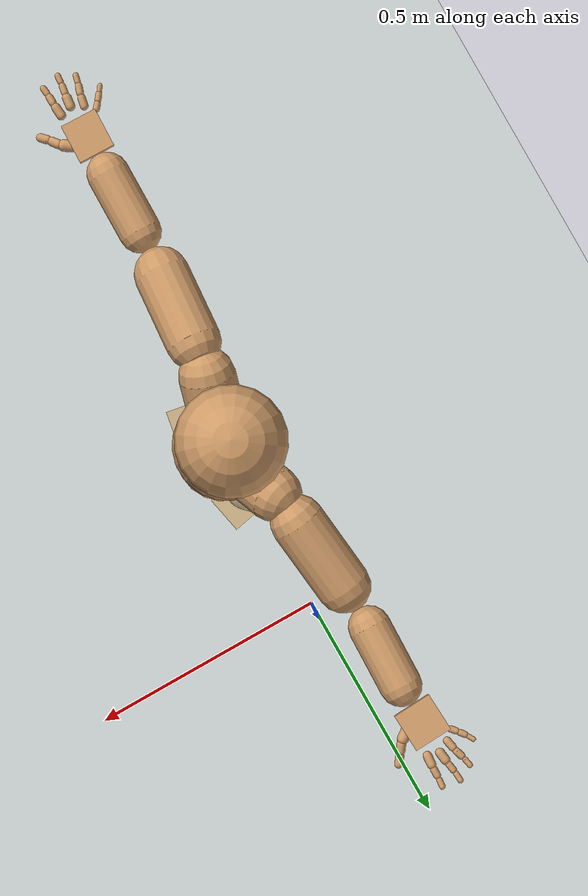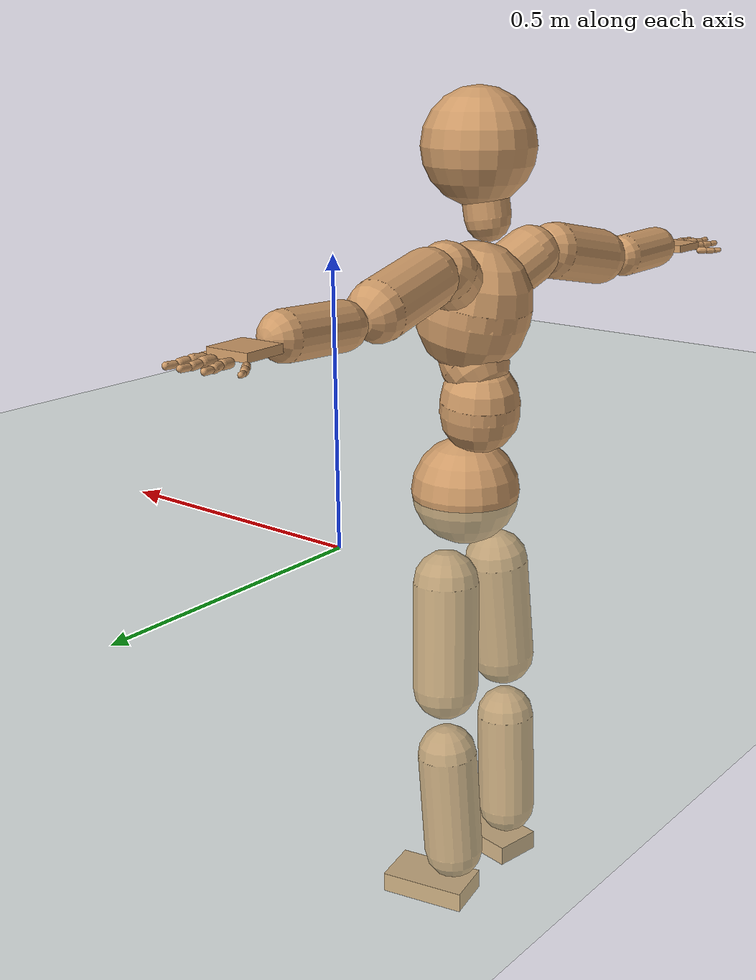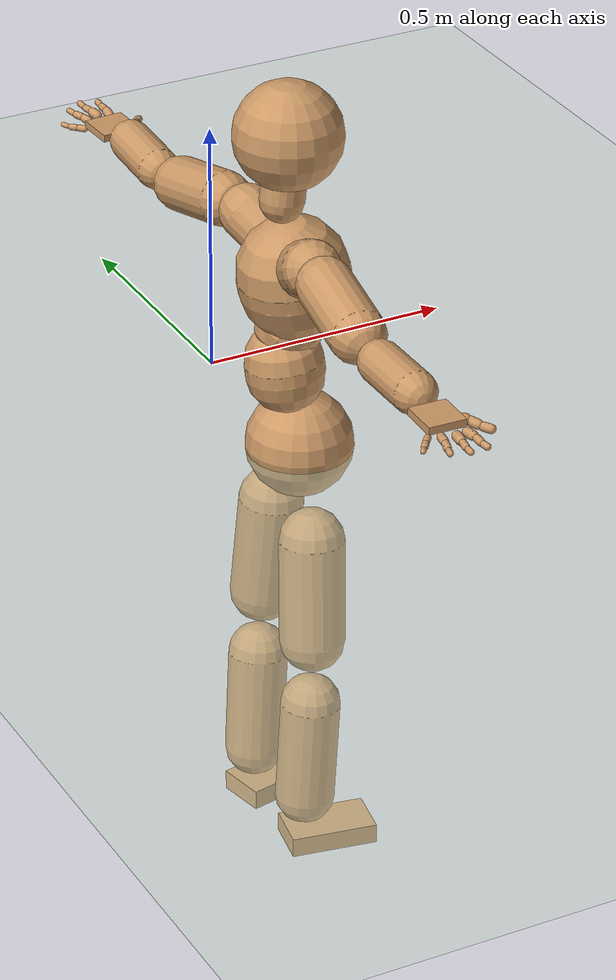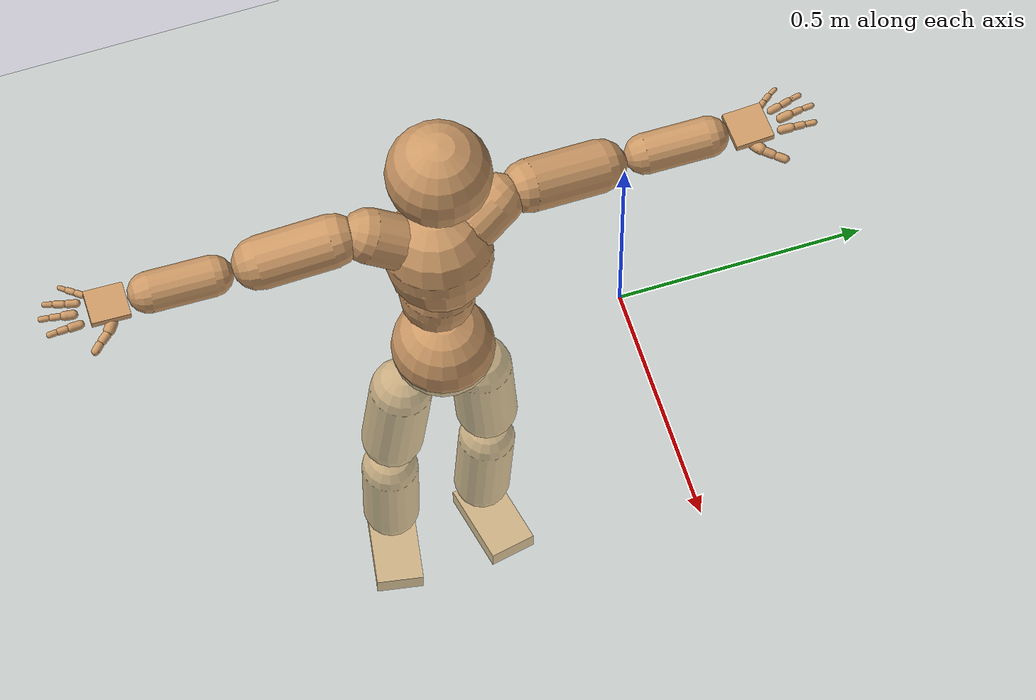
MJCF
<mujoco model="humanoid">
  <compiler coordinate="local" angle="radian"/>
  <default>
    <joint damping="0.0" armature="0.01" stiffness="0.0" limited="true"/>
    <geom conaffinity="1" condim="3" contype="7" margin="0.001" rgba="0.8 0.6 .4 1"/>
  </default>
  <asset>
    <texture type="skybox" builtin="gradient" rgb1=".4 .5 .6" rgb2="0 0 0" width="100" height="100"/>
    <texture builtin="flat" height="1278" mark="cross" markrgb="1 1 1" name="texgeom" random="0.01" rgb1="0.8 0.6 0.4" rgb2="0.8 0.6 0.4" type="cube" width="127"/>
    <texture builtin="checker" height="100" name="texplane" rgb1="0 0 0" rgb2="0.8 0.8 0.8" type="2d" width="100"/>
    <material name="MatPlane" reflectance="0.5" shininess="1" specular="1" texrepeat="60 60" texture="texplane"/>
    <material name="geom" texture="texgeom" texuniform="true"/>
  </asset>
  <worldbody>
    <light cutoff="100" diffuse="1 1 1" dir="-0 0 -1.3" directional="true" exponent="1" pos="0 0 1.3" specular=".1 .1 .1"/>
    <geom conaffinity="1" condim="3" name="floor" pos="0 0 0" rgba="0.8 0.9 0.8 1" size="100 100 .2" type="plane" material="MatPlane"/>
    <body name="Pelvis" pos="0.0008 -0.3659 0.0106">
      <freejoint name="Pelvis"/>
      <geom type="sphere" contype="1" conaffinity="1" density="500" size="0.1036" pos="0.0000 0.0000 0.0000" name="Pelvis"/>
      <body name="L_Hip" pos="-0.0129 0.0772 -0.0911">
        <joint name="L_Hip_x" type="hinge" pos="0 0 0" axis="1 0 0" stiffness="800" damping="80" armature="0.02" range="-180.0000 180.0000"/>
        <joint name="L_Hip_y" type="hinge" pos="0 0 0" axis="0 1 0" stiffness="800" damping="80" armature="0.02" range="-180.0000 180.0000"/>
        <joint name="L_Hip_z" type="hinge" pos="0 0 0" axis="0 0 1" stiffness="800" damping="80" armature="0.02" range="-180.0000 180.0000"/>
        <geom type="capsule" contype="1" conaffinity="1" density="500" fromto="-0.0038 0.0053 -0.0697 -0.0152 0.0213 -0.2790" size="0.063" name="L_Hip"/>
        <body name="L_Knee" pos="-0.0191 0.0266 -0.3487">
          <joint name="L_Knee_x" type="hinge" pos="0 0 0" axis="1 0 0" stiffness="800" damping="80" armature="0.02" range="-180.0000 180.0000"/>
          <joint name="L_Knee_y" type="hinge" pos="0 0 0" axis="0 1 0" stiffness="800" damping="80" armature="0.02" range="-180.0000 180.0000"/>
          <joint name="L_Knee_z" type="hinge" pos="0 0 0" axis="0 0 1" stiffness="800" damping="80" armature="0.02" range="-180.0000 180.0000"/>
          <geom type="capsule" contype="1" conaffinity="1" density="500" fromto="-0.0040 -0.0021 -0.0712 -0.0159 -0.0085 -0.2850" size="0.0578" name="L_Knee"/>
          <body name="L_Ankle" pos="-0.0199 -0.0106 -0.3562">
            <joint name="L_Ankle_x" type="hinge" pos="0 0 0" axis="1 0 0" stiffness="800" damping="80" armature="0.02" range="-180.0000 180.0000"/>
            <joint name="L_Ankle_y" type="hinge" pos="0 0 0" axis="0 1 0" stiffness="800" damping="80" armature="0.02" range="-180.0000 180.0000"/>
            <joint name="L_Ankle_z" type="hinge" pos="0 0 0" axis="0 0 1" stiffness="800" damping="80" armature="0.02" range="-180.0000 180.0000"/>
            <geom type="box" contype="1" conaffinity="1" density="500" pos="0.0527 0.0107 -0.0207" size="0.0849 0.048 0.0198" quat="0.9950 0.0000 0.0000 0.1003" name="L_Ankle"/>
            <body name="L_Toe" pos="0.1054 0.0215 -0.0413">
              <joint name="L_Toe_x" type="hinge" pos="0 0 0" axis="1 0 0" stiffness="500" damping="50" armature="0.02" range="-180.0000 180.0000"/>
              <joint name="L_Toe_y" type="hinge" pos="0 0 0" axis="0 1 0" stiffness="500" damping="50" armature="0.02" range="-180.0000 180.0000"/>
              <joint name="L_Toe_z" type="hinge" pos="0 0 0" axis="0 0 1" stiffness="500" damping="50" armature="0.02" range="-180.0000 180.0000"/>
              <geom type="box" contype="1" conaffinity="1" density="500" pos="0.0000 0.0000 0.0214" size="0.0009 0.0024 0.001" quat="0.9942 0.0000 0.0000 0.1074" name="L_Toe"/>
            </body>
          </body>
        </body>
      </body>
      <body name="R_Hip" pos="-0.0141 -0.0767 -0.0975">
        <joint name="R_Hip_x" type="hinge" pos="0 0 0" axis="1 0 0" stiffness="800" damping="80" armature="0.02" range="-180.0000 180.0000"/>
        <joint name="R_Hip_y" type="hinge" pos="0 0 0" axis="0 1 0" stiffness="800" damping="80" armature="0.02" range="-180.0000 180.0000"/>
        <joint name="R_Hip_z" type="hinge" pos="0 0 0" axis="0 0 1" stiffness="800" damping="80" armature="0.02" range="-180.0000 180.0000"/>
        <geom type="capsule" contype="1" conaffinity="1" density="500" fromto="-0.0025 -0.0062 -0.0689 -0.0101 -0.0248 -0.2756" size="0.0629" name="R_Hip"/>
        <body name="R_Knee" pos="-0.0126 -0.031 -0.3445">
          <joint name="R_Knee_x" type="hinge" pos="0 0 0" axis="1 0 0" stiffness="800" damping="80" armature="0.02" range="-180.0000 180.0000"/>
          <joint name="R_Knee_y" type="hinge" pos="0 0 0" axis="0 1 0" stiffness="800" damping="80" armature="0.02" range="-180.0000 180.0000"/>
          <joint name="R_Knee_z" type="hinge" pos="0 0 0" axis="0 0 1" stiffness="800" damping="80" armature="0.02" range="-180.0000 180.0000"/>
          <geom type="capsule" contype="1" conaffinity="1" density="500" fromto="-0.0033 0.0012 -0.0696 -0.0131 0.0046 -0.2782" size="0.0578" name="R_Knee"/>
          <body name="R_Ankle" pos="-0.0164 0.0058 -0.3478">
            <joint name="R_Ankle_x" type="hinge" pos="0 0 0" axis="1 0 0" stiffness="800" damping="80" armature="0.02" range="-180.0000 180.0000"/>
            <joint name="R_Ankle_y" type="hinge" pos="0 0 0" axis="0 1 0" stiffness="800" damping="80" armature="0.02" range="-180.0000 180.0000"/>
            <joint name="R_Ankle_z" type="hinge" pos="0 0 0" axis="0 0 1" stiffness="800" damping="80" armature="0.02" range="-180.0000 180.0000"/>
            <geom type="box" contype="1" conaffinity="1" density="500" pos="0.0496 -0.0086 -0.0223" size="0.0849 0.048 0.0198" quat="0.9963 0.0000 0.0000 -0.0860" name="R_Ankle"/>
            <body name="R_Toe" pos="0.0991 -0.0172 -0.0445">
              <joint name="R_Toe_x" type="hinge" pos="0 0 0" axis="1 0 0" stiffness="500" damping="50" armature="0.02" range="-180.0000 180.0000"/>
              <joint name="R_Toe_y" type="hinge" pos="0 0 0" axis="0 1 0" stiffness="500" damping="50" armature="0.02" range="-180.0000 180.0000"/>
              <joint name="R_Toe_z" type="hinge" pos="0 0 0" axis="0 0 1" stiffness="500" damping="50" armature="0.02" range="-180.0000 180.0000"/>
              <geom type="box" contype="1" conaffinity="1" density="500" pos="0.0000 0.0000 0.0230" size="0.0009 0.0024 0.001" quat="0.9972 0.0000 0.0000 -0.0747" name="R_Toe"/>
            </body>
          </body>
        </body>
      </body>
      <body name="Torso" pos="-0.0255 -0.0057 0.1053">
        <joint name="Torso_x" type="hinge" pos="0 0 0" axis="1 0 0" stiffness="1000" damping="100" armature="0.02" range="-180.0000 180.0000"/>
        <joint name="Torso_y" type="hinge" pos="0 0 0" axis="0 1 0" stiffness="1000" damping="100" armature="0.02" range="-180.0000 180.0000"/>
        <joint name="Torso_z" type="hinge" pos="0 0 0" axis="0 0 1" stiffness="1000" damping="100" armature="0.02" range="-180.0000 180.0000"/>
        <geom type="capsule" contype="1" conaffinity="1" density="500" fromto="-0.0071 0.0066 0.0748 -0.0047 0.0044 0.0499" size="0.0755" name="Torso"/>
        <body name="Spine" pos="-0.0118 0.0111 0.1247">
          <joint name="Spine_x" type="hinge" pos="0 0 0" axis="1 0 0" stiffness="1000" damping="100" armature="0.02" range="-180.0000 180.0000"/>
          <joint name="Spine_y" type="hinge" pos="0 0 0" axis="0 1 0" stiffness="1000" damping="100" armature="0.02" range="-180.0000 180.0000"/>
          <joint name="Spine_z" type="hinge" pos="0 0 0" axis="0 0 1" stiffness="1000" damping="100" armature="0.02" range="-180.0000 180.0000"/>
          <geom type="capsule" contype="1" conaffinity="1" density="500" fromto="0.0231 -0.0038 0.0275 0.0154 -0.0026 0.0183" size="0.0642" name="Spine"/>
          <body name="Chest" pos="0.0385 -0.0064 0.0459">
            <joint name="Chest_x" type="hinge" pos="0 0 0" axis="1 0 0" stiffness="1000" damping="100" armature="0.02" range="-180.0000 180.0000"/>
            <joint name="Chest_y" type="hinge" pos="0 0 0" axis="0 1 0" stiffness="1000" damping="100" armature="0.02" range="-180.0000 180.0000"/>
            <joint name="Chest_z" type="hinge" pos="0 0 0" axis="0 0 1" stiffness="1000" damping="100" armature="0.02" range="-180.0000 180.0000"/>
            <geom type="capsule" contype="1" conaffinity="1" density="500" fromto="-0.0179 -0.0017 0.0891 -0.0120 -0.0011 0.0594" size="0.1061" name="Chest"/>
            <body name="Neck" pos="-0.0452 -0.006 0.2067">
              <joint name="Neck_x" type="hinge" pos="0 0 0" axis="1 0 0" stiffness="500" damping="50" armature="0.02" range="-180.0000 180.0000"/>
              <joint name="Neck_y" type="hinge" pos="0 0 0" axis="0 1 0" stiffness="500" damping="50" armature="0.02" range="-180.0000 180.0000"/>
              <joint name="Neck_z" type="hinge" pos="0 0 0" axis="0 0 1" stiffness="500" damping="50" armature="0.02" range="-180.0000 180.0000"/>
              <geom type="capsule" contype="1" conaffinity="1" density="500" fromto="0.0040 0.0018 0.0307 0.0160 0.0072 0.1228" size="0.0424" name="Neck"/>
              <body name="Head" pos="0.02 0.009 0.1534">
                <joint name="Head_x" type="hinge" pos="0 0 0" axis="1 0 0" stiffness="500" damping="50" armature="0.02" range="-180.0000 180.0000"/>
                <joint name="Head_y" type="hinge" pos="0 0 0" axis="0 1 0" stiffness="500" damping="50" armature="0.02" range="-180.0000 180.0000"/>
                <joint name="Head_z" type="hinge" pos="0 0 0" axis="0 0 1" stiffness="500" damping="50" armature="0.02" range="-180.0000 180.0000"/>
                <geom type="sphere" contype="1" conaffinity="1" density="500" size="0.1034" pos="0.0000 0.0000 0.0000" name="Head"/>
              </body>
            </body>
            <body name="L_Thorax" pos="-0.0188 0.0542 0.1216">
              <joint name="L_Thorax_x" type="hinge" pos="0 0 0" axis="1 0 0" stiffness="500" damping="50" armature="0.02" range="-180.0000 180.0000"/>
              <joint name="L_Thorax_y" type="hinge" pos="0 0 0" axis="0 1 0" stiffness="500" damping="50" armature="0.02" range="-180.0000 180.0000"/>
              <joint name="L_Thorax_z" type="hinge" pos="0 0 0" axis="0 0 1" stiffness="500" damping="50" armature="0.02" range="-180.0000 180.0000"/>
              <geom type="capsule" contype="1" conaffinity="1" density="500" fromto="-0.0068 0.0175 0.0093 -0.0274 0.0701 0.0374" size="0.0537" name="L_Thorax"/>
              <body name="L_Shoulder" pos="-0.0342 0.0876 0.0467">
                <joint name="L_Shoulder_x" type="hinge" pos="0 0 0" axis="1 0 0" stiffness="500" damping="50" armature="0.02" range="-180.0000 180.0000"/>
                <joint name="L_Shoulder_y" type="hinge" pos="0 0 0" axis="0 1 0" stiffness="500" damping="50" armature="0.02" range="-180.0000 180.0000"/>
                <joint name="L_Shoulder_z" type="hinge" pos="0 0 0" axis="0 0 1" stiffness="500" damping="50" armature="0.02" range="-180.0000 180.0000"/>
                <geom type="capsule" contype="1" conaffinity="1" density="500" fromto="-0.0053 0.0502 -0.0101 -0.0214 0.2008 -0.0404" size="0.0528" name="L_Shoulder"/>
                <body name="L_Elbow" pos="-0.0267 0.251 -0.0506">
                  <joint name="L_Elbow_x" type="hinge" pos="0 0 0" axis="1 0 0" stiffness="500" damping="50" armature="0.02" range="-720.0000 720.0000"/>
                  <joint name="L_Elbow_y" type="hinge" pos="0 0 0" axis="0 1 0" stiffness="500" damping="50" armature="0.02" range="-720.0000 720.0000"/>
                  <joint name="L_Elbow_z" type="hinge" pos="0 0 0" axis="0 0 1" stiffness="500" damping="50" armature="0.02" range="-720.0000 720.0000"/>
                  <geom type="capsule" contype="1" conaffinity="1" density="500" fromto="0.0013 0.0423 0.0016 0.0050 0.1693 0.0064" size="0.0409" name="L_Elbow"/>
                  <body name="L_Wrist" pos="0.0063 0.2116 0.008">
                    <joint name="L_Wrist_x" type="hinge" pos="0 0 0" axis="1 0 0" stiffness="300" damping="30" armature="0.02" range="-180.0000 180.0000"/>
                    <joint name="L_Wrist_y" type="hinge" pos="0 0 0" axis="0 1 0" stiffness="300" damping="30" armature="0.02" range="-180.0000 180.0000"/>
                    <joint name="L_Wrist_z" type="hinge" pos="0 0 0" axis="0 0 1" stiffness="300" damping="30" armature="0.02" range="-180.0000 180.0000"/>
                    <geom type="box" contype="1" conaffinity="1" density="500" pos="-0.0021 0.0399 -0.0080" size="0.0389 0.0388 0.0073" quat="0.7251 0.0000 0.0000 -0.6887" name="L_Wrist"/>
                    <body name="L_Index1" pos="0.0205 0.0946 -0.0138">
                      <joint name="L_Index1_x" type="hinge" pos="0 0 0" axis="1 0 0" stiffness="100" damping="10" armature="0.02" range="-180.0000 180.0000"/>
                      <joint name="L_Index1_y" type="hinge" pos="0 0 0" axis="0 1 0" stiffness="100" damping="10" armature="0.02" range="-180.0000 180.0000"/>
                      <joint name="L_Index1_z" type="hinge" pos="0 0 0" axis="0 0 1" stiffness="100" damping="10" armature="0.02" range="-180.0000 180.0000"/>
                      <geom type="capsule" contype="1" conaffinity="1" density="500" fromto="0.0006 0.0061 0.0006 0.0022 0.0244 0.0022" size="0.0089" name="L_Index1"/>
                      <body name="L_Index2" pos="0.0028 0.0306 0.0028">
                        <joint name="L_Index2_x" type="hinge" pos="0 0 0" axis="1 0 0" stiffness="100" damping="10" armature="0.02" range="-180.0000 180.0000"/>
                        <joint name="L_Index2_y" type="hinge" pos="0 0 0" axis="0 1 0" stiffness="100" damping="10" armature="0.02" range="-180.0000 180.0000"/>
                        <joint name="L_Index2_z" type="hinge" pos="0 0 0" axis="0 0 1" stiffness="100" damping="10" armature="0.02" range="-180.0000 180.0000"/>
                        <geom type="capsule" contype="1" conaffinity="1" density="500" fromto="0.0001 0.0043 -0.0003 0.0003 0.0173 -0.0011" size="0.0073" name="L_Index2"/>
                        <body name="L_Index3" pos="0.0003 0.0216 -0.0014">
                          <joint name="L_Index3_x" type="hinge" pos="0 0 0" axis="1 0 0" stiffness="100" damping="10" armature="0.02" range="-180.0000 180.0000"/>
                          <joint name="L_Index3_y" type="hinge" pos="0 0 0" axis="0 1 0" stiffness="100" damping="10" armature="0.02" range="-180.0000 180.0000"/>
                          <joint name="L_Index3_z" type="hinge" pos="0 0 0" axis="0 0 1" stiffness="100" damping="10" armature="0.02" range="-180.0000 180.0000"/>
                          <geom type="capsule" contype="1" conaffinity="1" density="500" fromto="0.0005 0.0047 0.0001 0.0019 0.0189 0.0005" size="0.006" name="L_Index3"/>
                        </body>
                      </body>
                    </body>
                    <body name="L_Middle1" pos="-0.002 0.1013 -0.0115">
                      <joint name="L_Middle1_x" type="hinge" pos="0 0 0" axis="1 0 0" stiffness="100" damping="10" armature="0.02" range="-180.0000 180.0000"/>
                      <joint name="L_Middle1_y" type="hinge" pos="0 0 0" axis="0 1 0" stiffness="100" damping="10" armature="0.02" range="-180.0000 180.0000"/>
                      <joint name="L_Middle1_z" type="hinge" pos="0 0 0" axis="0 0 1" stiffness="100" damping="10" armature="0.02" range="-180.0000 180.0000"/>
                      <geom type="capsule" contype="1" conaffinity="1" density="500" fromto="-0.0007 0.0058 0.0003 -0.0029 0.0232 0.0011" size="0.0092" name="L_Middle1"/>
                      <body name="L_Middle2" pos="-0.0036 0.029 0.0014">
                        <joint name="L_Middle2_x" type="hinge" pos="0 0 0" axis="1 0 0" stiffness="100" damping="10" armature="0.02" range="-180.0000 180.0000"/>
                        <joint name="L_Middle2_y" type="hinge" pos="0 0 0" axis="0 1 0" stiffness="100" damping="10" armature="0.02" range="-180.0000 180.0000"/>
                        <joint name="L_Middle2_z" type="hinge" pos="0 0 0" axis="0 0 1" stiffness="100" damping="10" armature="0.02" range="-180.0000 180.0000"/>
                        <geom type="capsule" contype="1" conaffinity="1" density="500" fromto="-0.0007 0.0045 -0.0001 -0.0029 0.0179 -0.0005" size="0.0068" name="L_Middle2"/>
                        <body name="L_Middle3" pos="-0.0036 0.0224 -0.0006">
                          <joint name="L_Middle3_x" type="hinge" pos="0 0 0" axis="1 0 0" stiffness="100" damping="10" armature="0.02" range="-180.0000 180.0000"/>
                          <joint name="L_Middle3_y" type="hinge" pos="0 0 0" axis="0 1 0" stiffness="100" damping="10" armature="0.02" range="-180.0000 180.0000"/>
                          <joint name="L_Middle3_z" type="hinge" pos="0 0 0" axis="0 0 1" stiffness="100" damping="10" armature="0.02" range="-180.0000 180.0000"/>
                          <geom type="capsule" contype="1" conaffinity="1" density="500" fromto="-0.0003 0.0049 0.0003 -0.0013 0.0195 0.0011" size="0.0057" name="L_Middle3"/>
                        </body>
                      </body>
                    </body>
                    <body name="L_Pinky1" pos="-0.0409 0.0765 -0.0189">
                      <joint name="L_Pinky1_x" type="hinge" pos="0 0 0" axis="1 0 0" stiffness="100" damping="10" armature="0.02" range="-180.0000 180.0000"/>
                      <joint name="L_Pinky1_y" type="hinge" pos="0 0 0" axis="0 1 0" stiffness="100" damping="10" armature="0.02" range="-180.0000 180.0000"/>
                      <joint name="L_Pinky1_z" type="hinge" pos="0 0 0" axis="0 0 1" stiffness="100" damping="10" armature="0.02" range="-180.0000 180.0000"/>
                      <geom type="capsule" contype="1" conaffinity="1" density="500" fromto="-0.0023 0.0028 -0.0001 -0.0094 0.0112 -0.0004" size="0.0066" name="L_Pinky1"/>
                      <body name="L_Pinky2" pos="-0.0117 0.0141 -0.0006">
                        <joint name="L_Pinky2_x" type="hinge" pos="0 0 0" axis="1 0 0" stiffness="100" damping="10" armature="0.02" range="-180.0000 180.0000"/>
                        <joint name="L_Pinky2_y" type="hinge" pos="0 0 0" axis="0 1 0" stiffness="100" damping="10" armature="0.02" range="-180.0000 180.0000"/>
                        <joint name="L_Pinky2_z" type="hinge" pos="0 0 0" axis="0 0 1" stiffness="100" damping="10" armature="0.02" range="-180.0000 180.0000"/>
                        <geom type="capsule" contype="1" conaffinity="1" density="500" fromto="-0.0023 0.0029 -0.0002 -0.0090 0.0116 -0.0008" size="0.0064" name="L_Pinky2"/>
                        <body name="L_Pinky3" pos="-0.0113 0.0145 -0.001">
                          <joint name="L_Pinky3_x" type="hinge" pos="0 0 0" axis="1 0 0" stiffness="100" damping="10" armature="0.02" range="-180.0000 180.0000"/>
                          <joint name="L_Pinky3_y" type="hinge" pos="0 0 0" axis="0 1 0" stiffness="100" damping="10" armature="0.02" range="-180.0000 180.0000"/>
                          <joint name="L_Pinky3_z" type="hinge" pos="0 0 0" axis="0 0 1" stiffness="100" damping="10" armature="0.02" range="-180.0000 180.0000"/>
                          <geom type="capsule" contype="1" conaffinity="1" density="500" fromto="-0.0019 0.0033 0.0002 -0.0074 0.0132 0.0008" size="0.0048" name="L_Pinky3"/>
                        </body>
                      </body>
                    </body>
                    <body name="L_Ring1" pos="-0.0249 0.0895 -0.0139">
                      <joint name="L_Ring1_x" type="hinge" pos="0 0 0" axis="1 0 0" stiffness="100" damping="10" armature="0.02" range="-180.0000 180.0000"/>
                      <joint name="L_Ring1_y" type="hinge" pos="0 0 0" axis="0 1 0" stiffness="100" damping="10" armature="0.02" range="-180.0000 180.0000"/>
                      <joint name="L_Ring1_z" type="hinge" pos="0 0 0" axis="0 0 1" stiffness="100" damping="10" armature="0.02" range="-180.0000 180.0000"/>
                      <geom type="capsule" contype="1" conaffinity="1" density="500" fromto="-0.0010 0.0053 0.0003 -0.0041 0.0213 0.0014" size="0.0079" name="L_Ring1"/>
                      <body name="L_Ring2" pos="-0.0051 0.0266 0.0017">
                        <joint name="L_Ring2_x" type="hinge" pos="0 0 0" axis="1 0 0" stiffness="100" damping="10" armature="0.02" range="-180.0000 180.0000"/>
                        <joint name="L_Ring2_y" type="hinge" pos="0 0 0" axis="0 1 0" stiffness="100" damping="10" armature="0.02" range="-180.0000 180.0000"/>
                        <joint name="L_Ring2_z" type="hinge" pos="0 0 0" axis="0 0 1" stiffness="100" damping="10" armature="0.02" range="-180.0000 180.0000"/>
                        <geom type="capsule" contype="1" conaffinity="1" density="500" fromto="-0.0014 0.0043 -0.0002 -0.0055 0.0173 -0.0008" size="0.0072" name="L_Ring2"/>
                        <body name="L_Ring3" pos="-0.0069 0.0216 -0.001">
                          <joint name="L_Ring3_x" type="hinge" pos="0 0 0" axis="1 0 0" stiffness="100" damping="10" armature="0.02" range="-180.0000 180.0000"/>
                          <joint name="L_Ring3_y" type="hinge" pos="0 0 0" axis="0 1 0" stiffness="100" damping="10" armature="0.02" range="-180.0000 180.0000"/>
                          <joint name="L_Ring3_z" type="hinge" pos="0 0 0" axis="0 0 1" stiffness="100" damping="10" armature="0.02" range="-180.0000 180.0000"/>
                          <geom type="capsule" contype="1" conaffinity="1" density="500" fromto="-0.0010 0.0047 0.0002 -0.0039 0.0189 0.0008" size="0.0055" name="L_Ring3"/>
                        </body>
                      </body>
                    </body>
                    <body name="L_Thumb1" pos="0.0267 0.0375 -0.0218">
                      <joint name="L_Thumb1_x" type="hinge" pos="0 0 0" axis="1 0 0" stiffness="100" damping="10" armature="0.02" range="-180.0000 180.0000"/>
                      <joint name="L_Thumb1_y" type="hinge" pos="0 0 0" axis="0 1 0" stiffness="100" damping="10" armature="0.02" range="-180.0000 180.0000"/>
                      <joint name="L_Thumb1_z" type="hinge" pos="0 0 0" axis="0 0 1" stiffness="100" damping="10" armature="0.02" range="-180.0000 180.0000"/>
                      <geom type="capsule" contype="1" conaffinity="1" density="500" fromto="0.0047 0.0032 0.0003 0.0187 0.0128 0.0011" size="0.0116" name="L_Thumb1"/>
                      <body name="L_Thumb2" pos="0.0234 0.016 0.0013">
                        <joint name="L_Thumb2_x" type="hinge" pos="0 0 0" axis="1 0 0" stiffness="100" damping="10" armature="0.02" range="-180.0000 180.0000"/>
                        <joint name="L_Thumb2_y" type="hinge" pos="0 0 0" axis="0 1 0" stiffness="100" damping="10" armature="0.02" range="-180.0000 180.0000"/>
                        <joint name="L_Thumb2_z" type="hinge" pos="0 0 0" axis="0 0 1" stiffness="100" damping="10" armature="0.02" range="-180.0000 180.0000"/>
                        <geom type="capsule" contype="1" conaffinity="1" density="500" fromto="0.0028 0.0039 -0.0011 0.0111 0.0154 -0.0044" size="0.0091" name="L_Thumb2"/>
                        <body name="L_Thumb3" pos="0.0139 0.0193 -0.0056">
                          <joint name="L_Thumb3_x" type="hinge" pos="0 0 0" axis="1 0 0" stiffness="100" damping="10" armature="0.02" range="-180.0000 180.0000"/>
                          <joint name="L_Thumb3_y" type="hinge" pos="0 0 0" axis="0 1 0" stiffness="100" damping="10" armature="0.02" range="-180.0000 180.0000"/>
                          <joint name="L_Thumb3_z" type="hinge" pos="0 0 0" axis="0 0 1" stiffness="100" damping="10" armature="0.02" range="-180.0000 180.0000"/>
                          <geom type="capsule" contype="1" conaffinity="1" density="500" fromto="0.0032 0.0043 -0.0007 0.0127 0.0170 -0.0028" size="0.0084" name="L_Thumb3"/>
                        </body>
                      </body>
                    </body>
                  </body>
                </body>
              </body>
            </body>
            <body name="R_Thorax" pos="-0.0257 -0.0567 0.1171">
              <joint name="R_Thorax_x" type="hinge" pos="0 0 0" axis="1 0 0" stiffness="500" damping="50" armature="0.02" range="-180.0000 180.0000"/>
              <joint name="R_Thorax_y" type="hinge" pos="0 0 0" axis="0 1 0" stiffness="500" damping="50" armature="0.02" range="-180.0000 180.0000"/>
              <joint name="R_Thorax_z" type="hinge" pos="0 0 0" axis="0 0 1" stiffness="500" damping="50" armature="0.02" range="-180.0000 180.0000"/>
              <geom type="capsule" contype="1" conaffinity="1" density="500" fromto="-0.0054 -0.0189 0.0101 -0.0215 -0.0758 0.0403" size="0.0549" name="R_Thorax"/>
              <body name="R_Shoulder" pos="-0.0269 -0.0947 0.0504">
                <joint name="R_Shoulder_x" type="hinge" pos="0 0 0" axis="1 0 0" stiffness="500" damping="50" armature="0.02" range="-180.0000 180.0000"/>
                <joint name="R_Shoulder_y" type="hinge" pos="0 0 0" axis="0 1 0" stiffness="500" damping="50" armature="0.02" range="-180.0000 180.0000"/>
                <joint name="R_Shoulder_z" type="hinge" pos="0 0 0" axis="0 0 1" stiffness="500" damping="50" armature="0.02" range="-180.0000 180.0000"/>
                <geom type="capsule" contype="1" conaffinity="1" density="500" fromto="-0.0039 -0.0483 -0.0093 -0.0157 -0.1933 -0.0372" size="0.0533" name="R_Shoulder"/>
                <body name="R_Elbow" pos="-0.0196 -0.2417 -0.0465">
                  <joint name="R_Elbow_x" type="hinge" pos="0 0 0" axis="1 0 0" stiffness="500" damping="50" armature="0.02" range="-720.0000 720.0000"/>
                  <joint name="R_Elbow_y" type="hinge" pos="0 0 0" axis="0 1 0" stiffness="500" damping="50" armature="0.02" range="-720.0000 720.0000"/>
                  <joint name="R_Elbow_z" type="hinge" pos="0 0 0" axis="0 0 1" stiffness="500" damping="50" armature="0.02" range="-720.0000 720.0000"/>
                  <geom type="capsule" contype="1" conaffinity="1" density="500" fromto="-0.0006 -0.0424 0.0007 -0.0023 -0.1696 0.0030" size="0.041" name="R_Elbow"/>
                  <body name="R_Wrist" pos="-0.0029 -0.2119 0.0037">
                    <joint name="R_Wrist_x" type="hinge" pos="0 0 0" axis="1 0 0" stiffness="300" damping="30" armature="0.02" range="-180.0000 180.0000"/>
                    <joint name="R_Wrist_y" type="hinge" pos="0 0 0" axis="0 1 0" stiffness="300" damping="30" armature="0.02" range="-180.0000 180.0000"/>
                    <joint name="R_Wrist_z" type="hinge" pos="0 0 0" axis="0 0 1" stiffness="300" damping="30" armature="0.02" range="-180.0000 180.0000"/>
                    <geom type="box" contype="1" conaffinity="1" density="500" pos="-0.0012 -0.0394 -0.0075" size="0.0389 0.0364 0.0075" quat="0.7181 0.0000 0.0000 0.6960" name="R_Wrist"/>
                    <body name="R_Index1" pos="0.0221 -0.0936 -0.0129">
                      <joint name="R_Index1_x" type="hinge" pos="0 0 0" axis="1 0 0" stiffness="100" damping="10" armature="0.02" range="-180.0000 180.0000"/>
                      <joint name="R_Index1_y" type="hinge" pos="0 0 0" axis="0 1 0" stiffness="100" damping="10" armature="0.02" range="-180.0000 180.0000"/>
                      <joint name="R_Index1_z" type="hinge" pos="0 0 0" axis="0 0 1" stiffness="100" damping="10" armature="0.02" range="-180.0000 180.0000"/>
                      <geom type="capsule" contype="1" conaffinity="1" density="500" fromto="0.0006 -0.0061 0.0006 0.0022 -0.0244 0.0022" size="0.0089" name="R_Index1"/>
                      <body name="R_Index2" pos="0.0028 -0.0306 0.0028">
                        <joint name="R_Index2_x" type="hinge" pos="0 0 0" axis="1 0 0" stiffness="100" damping="10" armature="0.02" range="-180.0000 180.0000"/>
                        <joint name="R_Index2_y" type="hinge" pos="0 0 0" axis="0 1 0" stiffness="100" damping="10" armature="0.02" range="-180.0000 180.0000"/>
                        <joint name="R_Index2_z" type="hinge" pos="0 0 0" axis="0 0 1" stiffness="100" damping="10" armature="0.02" range="-180.0000 180.0000"/>
                        <geom type="capsule" contype="1" conaffinity="1" density="500" fromto="0.0001 -0.0043 -0.0003 0.0003 -0.0173 -0.0011" size="0.0073" name="R_Index2"/>
                        <body name="R_Index3" pos="0.0003 -0.0216 -0.0014">
                          <joint name="R_Index3_x" type="hinge" pos="0 0 0" axis="1 0 0" stiffness="100" damping="10" armature="0.02" range="-180.0000 180.0000"/>
                          <joint name="R_Index3_y" type="hinge" pos="0 0 0" axis="0 1 0" stiffness="100" damping="10" armature="0.02" range="-180.0000 180.0000"/>
                          <joint name="R_Index3_z" type="hinge" pos="0 0 0" axis="0 0 1" stiffness="100" damping="10" armature="0.02" range="-180.0000 180.0000"/>
                          <geom type="capsule" contype="1" conaffinity="1" density="500" fromto="0.0005 -0.0039 0.0001 0.0019 -0.0157 0.0005" size="0.0063" name="R_Index3"/>
                        </body>
                      </body>
                    </body>
                    <body name="R_Middle1" pos="-0.0003 -0.1003 -0.0105">
                      <joint name="R_Middle1_x" type="hinge" pos="0 0 0" axis="1 0 0" stiffness="100" damping="10" armature="0.02" range="-180.0000 180.0000"/>
                      <joint name="R_Middle1_y" type="hinge" pos="0 0 0" axis="0 1 0" stiffness="100" damping="10" armature="0.02" range="-180.0000 180.0000"/>
                      <joint name="R_Middle1_z" type="hinge" pos="0 0 0" axis="0 0 1" stiffness="100" damping="10" armature="0.02" range="-180.0000 180.0000"/>
                      <geom type="capsule" contype="1" conaffinity="1" density="500" fromto="-0.0007 -0.0058 0.0003 -0.0029 -0.0232 0.0011" size="0.0092" name="R_Middle1"/>
                      <body name="R_Middle2" pos="-0.0036 -0.029 0.0014">
                        <joint name="R_Middle2_x" type="hinge" pos="0 0 0" axis="1 0 0" stiffness="100" damping="10" armature="0.02" range="-180.0000 180.0000"/>
                        <joint name="R_Middle2_y" type="hinge" pos="0 0 0" axis="0 1 0" stiffness="100" damping="10" armature="0.02" range="-180.0000 180.0000"/>
                        <joint name="R_Middle2_z" type="hinge" pos="0 0 0" axis="0 0 1" stiffness="100" damping="10" armature="0.02" range="-180.0000 180.0000"/>
                        <geom type="capsule" contype="1" conaffinity="1" density="500" fromto="-0.0007 -0.0045 -0.0001 -0.0029 -0.0179 -0.0005" size="0.0068" name="R_Middle2"/>
                        <body name="R_Middle3" pos="-0.0036 -0.0224 -0.0006">
                          <joint name="R_Middle3_x" type="hinge" pos="0 0 0" axis="1 0 0" stiffness="100" damping="10" armature="0.02" range="-180.0000 180.0000"/>
                          <joint name="R_Middle3_y" type="hinge" pos="0 0 0" axis="0 1 0" stiffness="100" damping="10" armature="0.02" range="-180.0000 180.0000"/>
                          <joint name="R_Middle3_z" type="hinge" pos="0 0 0" axis="0 0 1" stiffness="100" damping="10" armature="0.02" range="-180.0000 180.0000"/>
                          <geom type="capsule" contype="1" conaffinity="1" density="500" fromto="-0.0003 -0.0041 0.0003 -0.0013 -0.0163 0.0011" size="0.006" name="R_Middle3"/>
                        </body>
                      </body>
                    </body>
                    <body name="R_Pinky1" pos="-0.0392 -0.0755 -0.018">
                      <joint name="R_Pinky1_x" type="hinge" pos="0 0 0" axis="1 0 0" stiffness="100" damping="10" armature="0.02" range="-180.0000 180.0000"/>
                      <joint name="R_Pinky1_y" type="hinge" pos="0 0 0" axis="0 1 0" stiffness="100" damping="10" armature="0.02" range="-180.0000 180.0000"/>
                      <joint name="R_Pinky1_z" type="hinge" pos="0 0 0" axis="0 0 1" stiffness="100" damping="10" armature="0.02" range="-180.0000 180.0000"/>
                      <geom type="capsule" contype="1" conaffinity="1" density="500" fromto="-0.0023 -0.0028 -0.0001 -0.0094 -0.0112 -0.0004" size="0.0066" name="R_Pinky1"/>
                      <body name="R_Pinky2" pos="-0.0117 -0.0141 -0.0006">
                        <joint name="R_Pinky2_x" type="hinge" pos="0 0 0" axis="1 0 0" stiffness="100" damping="10" armature="0.02" range="-180.0000 180.0000"/>
                        <joint name="R_Pinky2_y" type="hinge" pos="0 0 0" axis="0 1 0" stiffness="100" damping="10" armature="0.02" range="-180.0000 180.0000"/>
                        <joint name="R_Pinky2_z" type="hinge" pos="0 0 0" axis="0 0 1" stiffness="100" damping="10" armature="0.02" range="-180.0000 180.0000"/>
                        <geom type="capsule" contype="1" conaffinity="1" density="500" fromto="-0.0023 -0.0029 -0.0002 -0.0090 -0.0116 -0.0008" size="0.0064" name="R_Pinky2"/>
                        <body name="R_Pinky3" pos="-0.0113 -0.0145 -0.001">
                          <joint name="R_Pinky3_x" type="hinge" pos="0 0 0" axis="1 0 0" stiffness="100" damping="10" armature="0.02" range="-180.0000 180.0000"/>
                          <joint name="R_Pinky3_y" type="hinge" pos="0 0 0" axis="0 1 0" stiffness="100" damping="10" armature="0.02" range="-180.0000 180.0000"/>
                          <joint name="R_Pinky3_z" type="hinge" pos="0 0 0" axis="0 0 1" stiffness="100" damping="10" armature="0.02" range="-180.0000 180.0000"/>
                          <geom type="capsule" contype="1" conaffinity="1" density="500" fromto="-0.0019 -0.0025 0.0002 -0.0074 -0.0100 0.0008" size="0.005" name="R_Pinky3"/>
                        </body>
                      </body>
                    </body>
                    <body name="R_Ring1" pos="-0.0233 -0.0885 -0.013">
                      <joint name="R_Ring1_x" type="hinge" pos="0 0 0" axis="1 0 0" stiffness="100" damping="10" armature="0.02" range="-180.0000 180.0000"/>
                      <joint name="R_Ring1_y" type="hinge" pos="0 0 0" axis="0 1 0" stiffness="100" damping="10" armature="0.02" range="-180.0000 180.0000"/>
                      <joint name="R_Ring1_z" type="hinge" pos="0 0 0" axis="0 0 1" stiffness="100" damping="10" armature="0.02" range="-180.0000 180.0000"/>
                      <geom type="capsule" contype="1" conaffinity="1" density="500" fromto="-0.0010 -0.0053 0.0003 -0.0041 -0.0213 0.0014" size="0.0079" name="R_Ring1"/>
                      <body name="R_Ring2" pos="-0.0051 -0.0266 0.0017">
                        <joint name="R_Ring2_x" type="hinge" pos="0 0 0" axis="1 0 0" stiffness="100" damping="10" armature="0.02" range="-180.0000 180.0000"/>
                        <joint name="R_Ring2_y" type="hinge" pos="0 0 0" axis="0 1 0" stiffness="100" damping="10" armature="0.02" range="-180.0000 180.0000"/>
                        <joint name="R_Ring2_z" type="hinge" pos="0 0 0" axis="0 0 1" stiffness="100" damping="10" armature="0.02" range="-180.0000 180.0000"/>
                        <geom type="capsule" contype="1" conaffinity="1" density="500" fromto="-0.0014 -0.0043 -0.0002 -0.0055 -0.0173 -0.0008" size="0.0072" name="R_Ring2"/>
                        <body name="R_Ring3" pos="-0.0069 -0.0216 -0.001">
                          <joint name="R_Ring3_x" type="hinge" pos="0 0 0" axis="1 0 0" stiffness="100" damping="10" armature="0.02" range="-180.0000 180.0000"/>
                          <joint name="R_Ring3_y" type="hinge" pos="0 0 0" axis="0 1 0" stiffness="100" damping="10" armature="0.02" range="-180.0000 180.0000"/>
                          <joint name="R_Ring3_z" type="hinge" pos="0 0 0" axis="0 0 1" stiffness="100" damping="10" armature="0.02" range="-180.0000 180.0000"/>
                          <geom type="capsule" contype="1" conaffinity="1" density="500" fromto="-0.0010 -0.0039 0.0002 -0.0039 -0.0157 0.0008" size="0.0058" name="R_Ring3"/>
                        </body>
                      </body>
                    </body>
                    <body name="R_Thumb1" pos="0.0284 -0.0365 -0.0209">
                      <joint name="R_Thumb1_x" type="hinge" pos="0 0 0" axis="1 0 0" stiffness="100" damping="10" armature="0.02" range="-180.0000 180.0000"/>
                      <joint name="R_Thumb1_y" type="hinge" pos="0 0 0" axis="0 1 0" stiffness="100" damping="10" armature="0.02" range="-180.0000 180.0000"/>
                      <joint name="R_Thumb1_z" type="hinge" pos="0 0 0" axis="0 0 1" stiffness="100" damping="10" armature="0.02" range="-180.0000 180.0000"/>
                      <geom type="capsule" contype="1" conaffinity="1" density="500" fromto="0.0047 -0.0032 0.0003 0.0187 -0.0128 0.0011" size="0.0116" name="R_Thumb1"/>
                      <body name="R_Thumb2" pos="0.0234 -0.016 0.0013">
                        <joint name="R_Thumb2_x" type="hinge" pos="0 0 0" axis="1 0 0" stiffness="100" damping="10" armature="0.02" range="-180.0000 180.0000"/>
                        <joint name="R_Thumb2_y" type="hinge" pos="0 0 0" axis="0 1 0" stiffness="100" damping="10" armature="0.02" range="-180.0000 180.0000"/>
                        <joint name="R_Thumb2_z" type="hinge" pos="0 0 0" axis="0 0 1" stiffness="100" damping="10" armature="0.02" range="-180.0000 180.0000"/>
                        <geom type="capsule" contype="1" conaffinity="1" density="500" fromto="0.0028 -0.0039 -0.0011 0.0111 -0.0154 -0.0044" size="0.0091" name="R_Thumb2"/>
                        <body name="R_Thumb3" pos="0.0139 -0.0193 -0.0056">
                          <joint name="R_Thumb3_x" type="hinge" pos="0 0 0" axis="1 0 0" stiffness="100" damping="10" armature="0.02" range="-180.0000 180.0000"/>
                          <joint name="R_Thumb3_y" type="hinge" pos="0 0 0" axis="0 1 0" stiffness="100" damping="10" armature="0.02" range="-180.0000 180.0000"/>
                          <joint name="R_Thumb3_z" type="hinge" pos="0 0 0" axis="0 0 1" stiffness="100" damping="10" armature="0.02" range="-180.0000 180.0000"/>
                          <geom type="capsule" contype="1" conaffinity="1" density="500" fromto="0.0032 -0.0035 -0.0007 0.0127 -0.0138 -0.0028" size="0.0086" name="R_Thumb3"/>
                        </body>
                      </body>
                    </body>
                  </body>
                </body>
              </body>
            </body>
          </body>
        </body>
      </body>
    </body>
  </worldbody>
  <actuator>
    <motor name="L_Hip_x" joint="L_Hip_x" gear="500"/>
    <motor name="L_Hip_y" joint="L_Hip_y" gear="500"/>
    <motor name="L_Hip_z" joint="L_Hip_z" gear="500"/>
    <motor name="L_Knee_x" joint="L_Knee_x" gear="500"/>
    <motor name="L_Knee_y" joint="L_Knee_y" gear="500"/>
    <motor name="L_Knee_z" joint="L_Knee_z" gear="500"/>
    <motor name="L_Ankle_x" joint="L_Ankle_x" gear="500"/>
    <motor name="L_Ankle_y" joint="L_Ankle_y" gear="500"/>
    <motor name="L_Ankle_z" joint="L_Ankle_z" gear="500"/>
    <motor name="L_Toe_x" joint="L_Toe_x" gear="500"/>
    <motor name="L_Toe_y" joint="L_Toe_y" gear="500"/>
    <motor name="L_Toe_z" joint="L_Toe_z" gear="500"/>
    <motor name="R_Hip_x" joint="R_Hip_x" gear="500"/>
    <motor name="R_Hip_y" joint="R_Hip_y" gear="500"/>
    <motor name="R_Hip_z" joint="R_Hip_z" gear="500"/>
    <motor name="R_Knee_x" joint="R_Knee_x" gear="500"/>
    <motor name="R_Knee_y" joint="R_Knee_y" gear="500"/>
    <motor name="R_Knee_z" joint="R_Knee_z" gear="500"/>
    <motor name="R_Ankle_x" joint="R_Ankle_x" gear="500"/>
    <motor name="R_Ankle_y" joint="R_Ankle_y" gear="500"/>
    <motor name="R_Ankle_z" joint="R_Ankle_z" gear="500"/>
    <motor name="R_Toe_x" joint="R_Toe_x" gear="500"/>
    <motor name="R_Toe_y" joint="R_Toe_y" gear="500"/>
    <motor name="R_Toe_z" joint="R_Toe_z" gear="500"/>
    <motor name="Torso_x" joint="Torso_x" gear="500"/>
    <motor name="Torso_y" joint="Torso_y" gear="500"/>
    <motor name="Torso_z" joint="Torso_z" gear="500"/>
    <motor name="Spine_x" joint="Spine_x" gear="500"/>
    <motor name="Spine_y" joint="Spine_y" gear="500"/>
    <motor name="Spine_z" joint="Spine_z" gear="500"/>
    <motor name="Chest_x" joint="Chest_x" gear="500"/>
    <motor name="Chest_y" joint="Chest_y" gear="500"/>
    <motor name="Chest_z" joint="Chest_z" gear="500"/>
    <motor name="Neck_x" joint="Neck_x" gear="500"/>
    <motor name="Neck_y" joint="Neck_y" gear="500"/>
    <motor name="Neck_z" joint="Neck_z" gear="500"/>
    <motor name="Head_x" joint="Head_x" gear="500"/>
    <motor name="Head_y" joint="Head_y" gear="500"/>
    <motor name="Head_z" joint="Head_z" gear="500"/>
    <motor name="L_Thorax_x" joint="L_Thorax_x" gear="500"/>
    <motor name="L_Thorax_y" joint="L_Thorax_y" gear="500"/>
    <motor name="L_Thorax_z" joint="L_Thorax_z" gear="500"/>
    <motor name="L_Shoulder_x" joint="L_Shoulder_x" gear="500"/>
    <motor name="L_Shoulder_y" joint="L_Shoulder_y" gear="500"/>
    <motor name="L_Shoulder_z" joint="L_Shoulder_z" gear="500"/>
    <motor name="L_Elbow_x" joint="L_Elbow_x" gear="500"/>
    <motor name="L_Elbow_y" joint="L_Elbow_y" gear="500"/>
    <motor name="L_Elbow_z" joint="L_Elbow_z" gear="500"/>
    <motor name="L_Wrist_x" joint="L_Wrist_x" gear="500"/>
    <motor name="L_Wrist_y" joint="L_Wrist_y" gear="500"/>
    <motor name="L_Wrist_z" joint="L_Wrist_z" gear="500"/>
    <motor name="L_Index1_x" joint="L_Index1_x" gear="500"/>
    <motor name="L_Index1_y" joint="L_Index1_y" gear="500"/>
    <motor name="L_Index1_z" joint="L_Index1_z" gear="500"/>
    <motor name="L_Index2_x" joint="L_Index2_x" gear="500"/>
    <motor name="L_Index2_y" joint="L_Index2_y" gear="500"/>
    <motor name="L_Index2_z" joint="L_Index2_z" gear="500"/>
    <motor name="L_Index3_x" joint="L_Index3_x" gear="500"/>
    <motor name="L_Index3_y" joint="L_Index3_y" gear="500"/>
    <motor name="L_Index3_z" joint="L_Index3_z" gear="500"/>
    <motor name="L_Middle1_x" joint="L_Middle1_x" gear="500"/>
    <motor name="L_Middle1_y" joint="L_Middle1_y" gear="500"/>
    <motor name="L_Middle1_z" joint="L_Middle1_z" gear="500"/>
    <motor name="L_Middle2_x" joint="L_Middle2_x" gear="500"/>
    <motor name="L_Middle2_y" joint="L_Middle2_y" gear="500"/>
    <motor name="L_Middle2_z" joint="L_Middle2_z" gear="500"/>
    <motor name="L_Middle3_x" joint="L_Middle3_x" gear="500"/>
    <motor name="L_Middle3_y" joint="L_Middle3_y" gear="500"/>
    <motor name="L_Middle3_z" joint="L_Middle3_z" gear="500"/>
    <motor name="L_Pinky1_x" joint="L_Pinky1_x" gear="500"/>
    <motor name="L_Pinky1_y" joint="L_Pinky1_y" gear="500"/>
    <motor name="L_Pinky1_z" joint="L_Pinky1_z" gear="500"/>
    <motor name="L_Pinky2_x" joint="L_Pinky2_x" gear="500"/>
    <motor name="L_Pinky2_y" joint="L_Pinky2_y" gear="500"/>
    <motor name="L_Pinky2_z" joint="L_Pinky2_z" gear="500"/>
    <motor name="L_Pinky3_x" joint="L_Pinky3_x" gear="500"/>
    <motor name="L_Pinky3_y" joint="L_Pinky3_y" gear="500"/>
    <motor name="L_Pinky3_z" joint="L_Pinky3_z" gear="500"/>
    <motor name="L_Ring1_x" joint="L_Ring1_x" gear="500"/>
    <motor name="L_Ring1_y" joint="L_Ring1_y" gear="500"/>
    <motor name="L_Ring1_z" joint="L_Ring1_z" gear="500"/>
    <motor name="L_Ring2_x" joint="L_Ring2_x" gear="500"/>
    <motor name="L_Ring2_y" joint="L_Ring2_y" gear="500"/>
    <motor name="L_Ring2_z" joint="L_Ring2_z" gear="500"/>
    <motor name="L_Ring3_x" joint="L_Ring3_x" gear="500"/>
    <motor name="L_Ring3_y" joint="L_Ring3_y" gear="500"/>
    <motor name="L_Ring3_z" joint="L_Ring3_z" gear="500"/>
    <motor name="L_Thumb1_x" joint="L_Thumb1_x" gear="500"/>
    <motor name="L_Thumb1_y" joint="L_Thumb1_y" gear="500"/>
    <motor name="L_Thumb1_z" joint="L_Thumb1_z" gear="500"/>
    <motor name="L_Thumb2_x" joint="L_Thumb2_x" gear="500"/>
    <motor name="L_Thumb2_y" joint="L_Thumb2_y" gear="500"/>
    <motor name="L_Thumb2_z" joint="L_Thumb2_z" gear="500"/>
    <motor name="L_Thumb3_x" joint="L_Thumb3_x" gear="500"/>
    <motor name="L_Thumb3_y" joint="L_Thumb3_y" gear="500"/>
    <motor name="L_Thumb3_z" joint="L_Thumb3_z" gear="500"/>
    <motor name="R_Thorax_x" joint="R_Thorax_x" gear="500"/>
    <motor name="R_Thorax_y" joint="R_Thorax_y" gear="500"/>
    <motor name="R_Thorax_z" joint="R_Thorax_z" gear="500"/>
    <motor name="R_Shoulder_x" joint="R_Shoulder_x" gear="500"/>
    <motor name="R_Shoulder_y" joint="R_Shoulder_y" gear="500"/>
    <motor name="R_Shoulder_z" joint="R_Shoulder_z" gear="500"/>
    <motor name="R_Elbow_x" joint="R_Elbow_x" gear="500"/>
    <motor name="R_Elbow_y" joint="R_Elbow_y" gear="500"/>
    <motor name="R_Elbow_z" joint="R_Elbow_z" gear="500"/>
    <motor name="R_Wrist_x" joint="R_Wrist_x" gear="500"/>
    <motor name="R_Wrist_y" joint="R_Wrist_y" gear="500"/>
    <motor name="R_Wrist_z" joint="R_Wrist_z" gear="500"/>
    <motor name="R_Index1_x" joint="R_Index1_x" gear="500"/>
    <motor name="R_Index1_y" joint="R_Index1_y" gear="500"/>
    <motor name="R_Index1_z" joint="R_Index1_z" gear="500"/>
    <motor name="R_Index2_x" joint="R_Index2_x" gear="500"/>
    <motor name="R_Index2_y" joint="R_Index2_y" gear="500"/>
    <motor name="R_Index2_z" joint="R_Index2_z" gear="500"/>
    <motor name="R_Index3_x" joint="R_Index3_x" gear="500"/>
    <motor name="R_Index3_y" joint="R_Index3_y" gear="500"/>
    <motor name="R_Index3_z" joint="R_Index3_z" gear="500"/>
    <motor name="R_Middle1_x" joint="R_Middle1_x" gear="500"/>
    <motor name="R_Middle1_y" joint="R_Middle1_y" gear="500"/>
    <motor name="R_Middle1_z" joint="R_Middle1_z" gear="500"/>
    <motor name="R_Middle2_x" joint="R_Middle2_x" gear="500"/>
    <motor name="R_Middle2_y" joint="R_Middle2_y" gear="500"/>
    <motor name="R_Middle2_z" joint="R_Middle2_z" gear="500"/>
    <motor name="R_Middle3_x" joint="R_Middle3_x" gear="500"/>
    <motor name="R_Middle3_y" joint="R_Middle3_y" gear="500"/>
    <motor name="R_Middle3_z" joint="R_Middle3_z" gear="500"/>
    <motor name="R_Pinky1_x" joint="R_Pinky1_x" gear="500"/>
    <motor name="R_Pinky1_y" joint="R_Pinky1_y" gear="500"/>
    <motor name="R_Pinky1_z" joint="R_Pinky1_z" gear="500"/>
    <motor name="R_Pinky2_x" joint="R_Pinky2_x" gear="500"/>
    <motor name="R_Pinky2_y" joint="R_Pinky2_y" gear="500"/>
    <motor name="R_Pinky2_z" joint="R_Pinky2_z" gear="500"/>
    <motor name="R_Pinky3_x" joint="R_Pinky3_x" gear="500"/>
    <motor name="R_Pinky3_y" joint="R_Pinky3_y" gear="500"/>
    <motor name="R_Pinky3_z" joint="R_Pinky3_z" gear="500"/>
    <motor name="R_Ring1_x" joint="R_Ring1_x" gear="500"/>
    <motor name="R_Ring1_y" joint="R_Ring1_y" gear="500"/>
    <motor name="R_Ring1_z" joint="R_Ring1_z" gear="500"/>
    <motor name="R_Ring2_x" joint="R_Ring2_x" gear="500"/>
    <motor name="R_Ring2_y" joint="R_Ring2_y" gear="500"/>
    <motor name="R_Ring2_z" joint="R_Ring2_z" gear="500"/>
    <motor name="R_Ring3_x" joint="R_Ring3_x" gear="500"/>
    <motor name="R_Ring3_y" joint="R_Ring3_y" gear="500"/>
    <motor name="R_Ring3_z" joint="R_Ring3_z" gear="500"/>
    <motor name="R_Thumb1_x" joint="R_Thumb1_x" gear="500"/>
    <motor name="R_Thumb1_y" joint="R_Thumb1_y" gear="500"/>
    <motor name="R_Thumb1_z" joint="R_Thumb1_z" gear="500"/>
    <motor name="R_Thumb2_x" joint="R_Thumb2_x" gear="500"/>
    <motor name="R_Thumb2_y" joint="R_Thumb2_y" gear="500"/>
    <motor name="R_Thumb2_z" joint="R_Thumb2_z" gear="500"/>
    <motor name="R_Thumb3_x" joint="R_Thumb3_x" gear="500"/>
    <motor name="R_Thumb3_y" joint="R_Thumb3_y" gear="500"/>
    <motor name="R_Thumb3_z" joint="R_Thumb3_z" gear="500"/>
  </actuator>
  <contact>
    <exclude body1="Torso" body2="Chest"/>
    <exclude body1="Head" body2="Chest"/>
    <exclude body1="R_Knee" body2="R_Toe"/>
    <exclude body1="R_Knee" body2="L_Ankle"/>
    <exclude body1="R_Knee" body2="L_Toe"/>
    <exclude body1="L_Knee" body2="L_Toe"/>
    <exclude body1="L_Knee" body2="R_Ankle"/>
    <exclude body1="L_Knee" body2="R_Toe"/>
    <exclude body1="L_Shoulder" body2="Chest"/>
    <exclude body1="R_Shoulder" body2="Chest"/>
  </contact>
  <sensor/>
  <size njmax="700" nconmax="700"/>
</mujoco>
